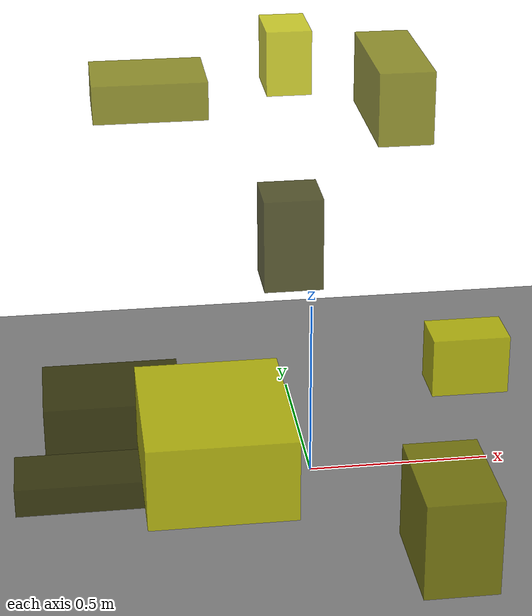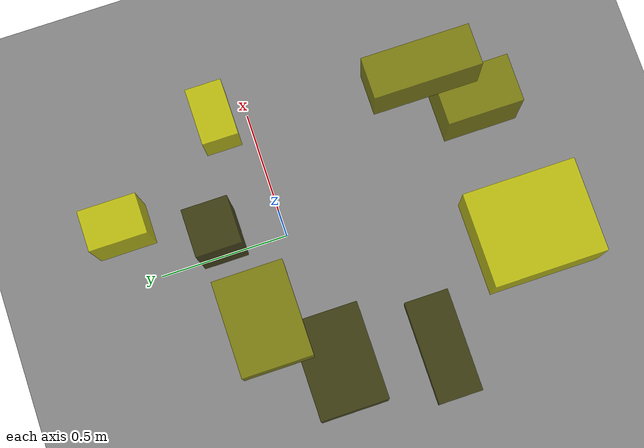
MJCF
<?xml version="1.0"?>
<mujoco model="obstacle_scene">
  <compiler angle="radian" coordinate="local"/>
  <option timestep="0.001" gravity="0 0 -9.81"/>

  <asset>
    <material name="obstacle_mat" rgba="0.8 0.8 0.0 0.8"/>
    <material name="ground_mat" rgba="0.5 0.5 0.5 1"/>
  </asset>

  <worldbody>
    <!-- Ground plane -->
    <geom name="ground" type="plane" size="3 3 0.1" material="ground_mat"/>

    <!-- Obstacles -->
    <body name="obstacle_0" pos="-0.607766 -0.404621 0.251650">
      <geom name="obs_0" type="box" size="0.190047 0.080998 0.036761" rgba="0.2 0.2 0.0 0.8"/>
    </body>
    <body name="obstacle_1" pos="0.101479 -0.506654 1.275502">
      <geom name="obs_1" type="box" size="0.060851 0.157874 0.082354" rgba="0.5 0.5 0.0 0.8"/>
    </body>
    <body name="obstacle_2" pos="-0.337531 -0.791378 0.565900">
      <geom name="obs_2" type="box" size="0.164018 0.195904 0.095926" rgba="0.8 0.8 0.0 0.8"/>
    </body>
    <body name="obstacle_3" pos="-0.027265 0.221049 0.613131">
      <geom name="obs_3" type="box" size="0.081433 0.077747 0.132475" rgba="0.2 0.2 0.0 0.8"/>
    </body>
    <body name="obstacle_4" pos="-0.409400 0.141506 1.075902">
      <geom name="obs_4" type="box" size="0.146433 0.107807 0.049960" rgba="0.5 0.5 0.0 0.8"/>
    </body>
    <body name="obstacle_5" pos="0.457718 0.118040 0.260605">
      <geom name="obs_5" type="box" size="0.107521 0.067626 0.084931" rgba="0.8 0.8 0.0 0.8"/>
    </body>
    <body name="obstacle_6" pos="-0.541274 -0.035286 0.201376">
      <geom name="obs_6" type="box" size="0.181417 0.126823 0.121286" rgba="0.2 0.2 0.0 0.8"/>
    </body>
    <body name="obstacle_7" pos="0.203296 -0.806069 0.328860">
      <geom name="obs_7" type="box" size="0.089086 0.139757 0.122216" rgba="0.5 0.5 0.0 0.8"/>
    </body>
    <body name="obstacle_8" pos="-0.008535 0.465976 1.055297">
      <geom name="obs_8" type="box" size="0.061895 0.087681 0.090478" rgba="0.8 0.8 0.0 0.8"/>
    </body>
  </worldbody>
</mujoco>
